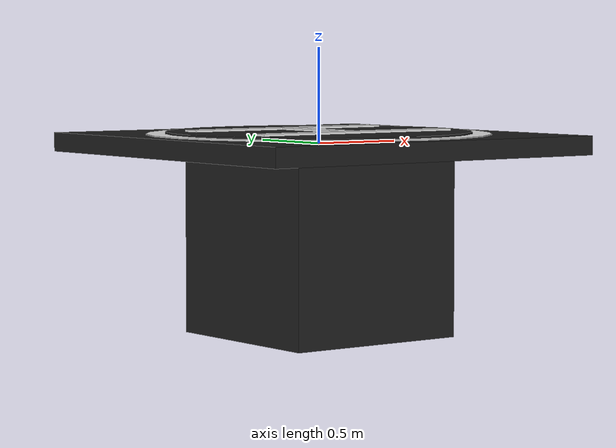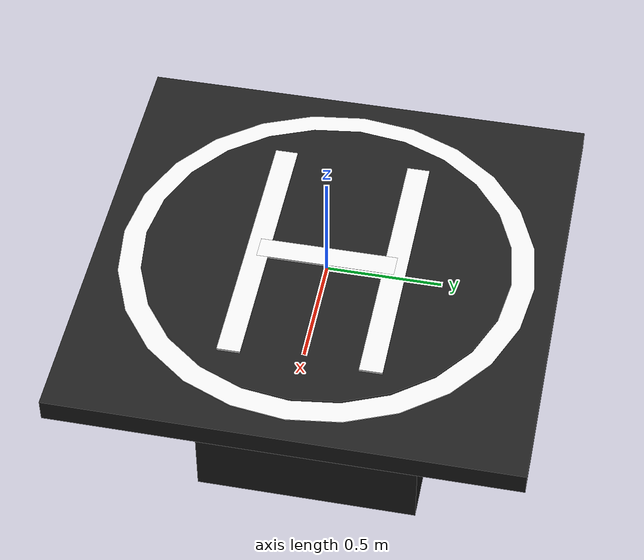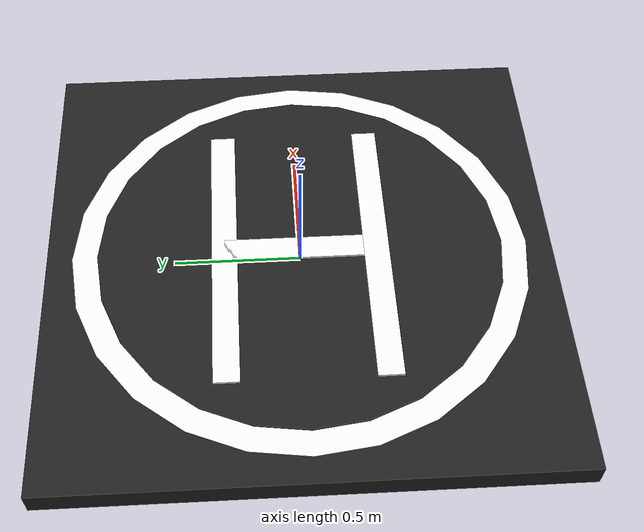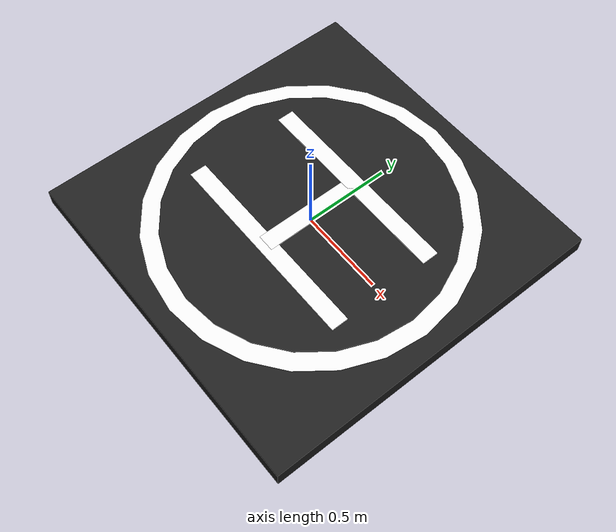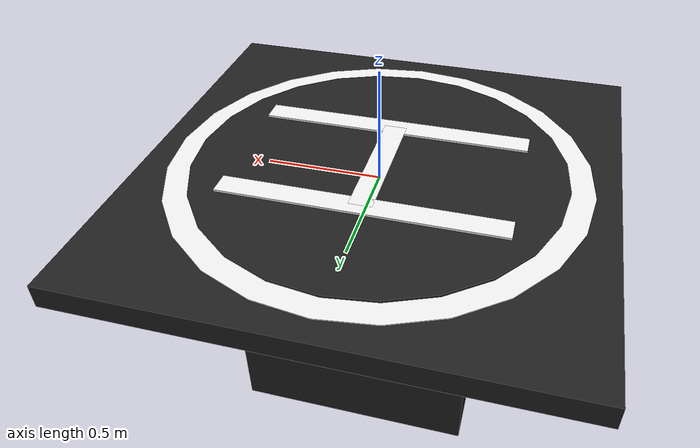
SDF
<?xml version="1.0"?>
<sdf version="1.6">
  <model name="helipuerto">
    <static>true</static>
    <pose>0 0 0 0 0 0</pose>
    <link name="base_link">
      <visual name="visual">
        <geometry>
            <box>
            <size>2 2 0.1</size> <!-- Tamaño de la H (ancho, largo, altura) -->
          </box>
        </geometry>
        <material>
          <script>
            <uri>file://media/materials/scripts/gazebo.material</uri>
            <name>Gazebo/Black</name> <!-- Material blanco -->
          </script>
        </material>
    </visual>
    <visual name="base">
        <pose>0 0 -0.5 0 0 0</pose>
        <geometry>
            <box>
            <size>1 1 1</size> <!-- Tamaño de la H (ancho, largo, altura) -->
          </box>
        </geometry>
        <material>
          <script>
            <uri>file://media/materials/scripts/gazebo.material</uri>
            <name>Gazebo/Black</name> <!-- Material blanco -->
          </script>
        </material>
    </visual>
    <visual name="h-izq">
        <pose>0 0.3 0.07 0 0 0</pose>
        <geometry>
            <box>
            <size>1.2 0.1 0.01</size> <!-- Tamaño de la H (ancho, largo, altura) -->
          </box>
        </geometry>
        <material>
          <script>
            <uri>file://media/materials/scripts/gazebo.material</uri>
            <name>Gazebo/White</name> <!-- Material blanco -->
          </script>
        </material>
    </visual>
    <visual name="h-der">
        <pose>0 -0.3 0.07 0 0 0</pose>
        <geometry>
            <box>
            <size>1.2 0.1 0.01</size> <!-- Tamaño de la H (ancho, largo, altura) -->
          </box>
        </geometry>
        <material>
          <script>
            <uri>file://media/materials/scripts/gazebo.material</uri>
            <name>Gazebo/White</name> <!-- Material blanco -->
          </script>
        </material>
    </visual>
    <visual name="h-cer">
        <pose>0 0 0.07 0 0 0</pose>
        <geometry>
            <box>
            <size>0.1 0.6 0.01</size> <!-- Tamaño de la H (ancho, largo, altura) -->
          </box>
        </geometry>
        <material>
          <script>
            <uri>file://media/materials/scripts/gazebo.material</uri>
            <name>Gazebo/White</name> <!-- Material blanco -->
          </script>
        </material>
    </visual>

      <visual name="ring_visual">
        <pose>0 0 0.05 0 0 0</pose>
        <geometry>

          <cylinder>
            <radius>0.9</radius>
            <length>0.01</length>
          </cylinder>
        </geometry>
        <material>
          <script>
            <uri>file://media/materials/scripts/gazebo.material</uri>
            <name>Gazebo/White</name>
          </script>
        </material>
      </visual>
      <visual name="ring_visual2">
        <pose>0 0 0.06 0 0 0</pose> <!-- Ajuste para que esté por encima del suelo -->
        <geometry>
          <!-- Cilindro para el radio externo -->
          <cylinder>
            <radius>0.8</radius> <!-- Radio externo -->
            <length>0.01</length> <!-- Altura del anillo -->
          </cylinder>
        </geometry>
        <material>
          <script>
            <uri>file://media/materials/scripts/gazebo.material</uri>
            <name>Gazebo/Black</name> <!-- Material blanco -->
          </script>
        </material>
      </visual>

      <collision name="h_collision">
        <geometry>
          <box>
            <size>2 2 0.1</size>
          </box>
        </geometry>
      </collision>
    </link>
  </model>
</sdf>
